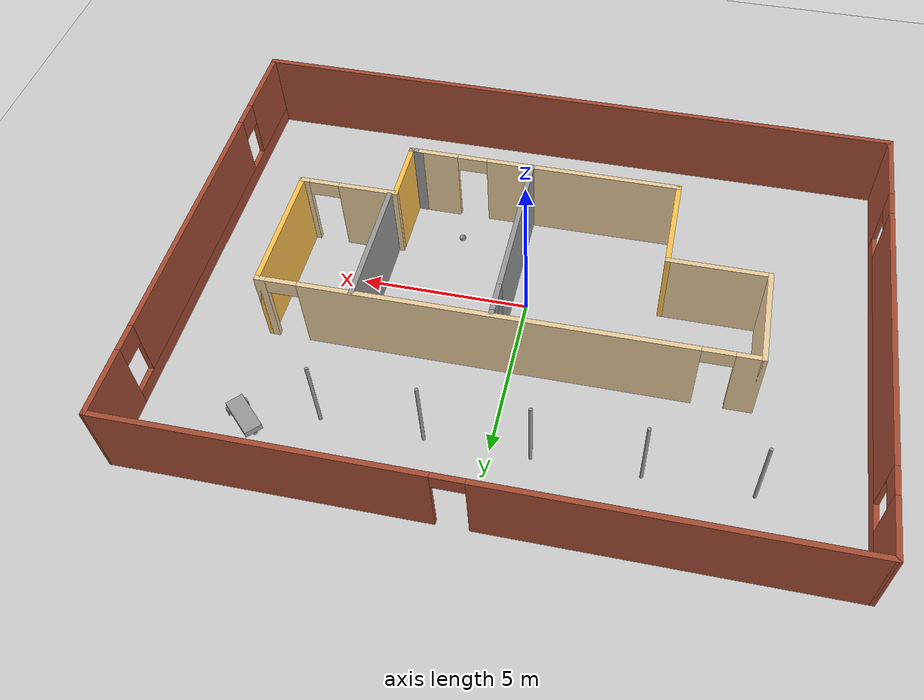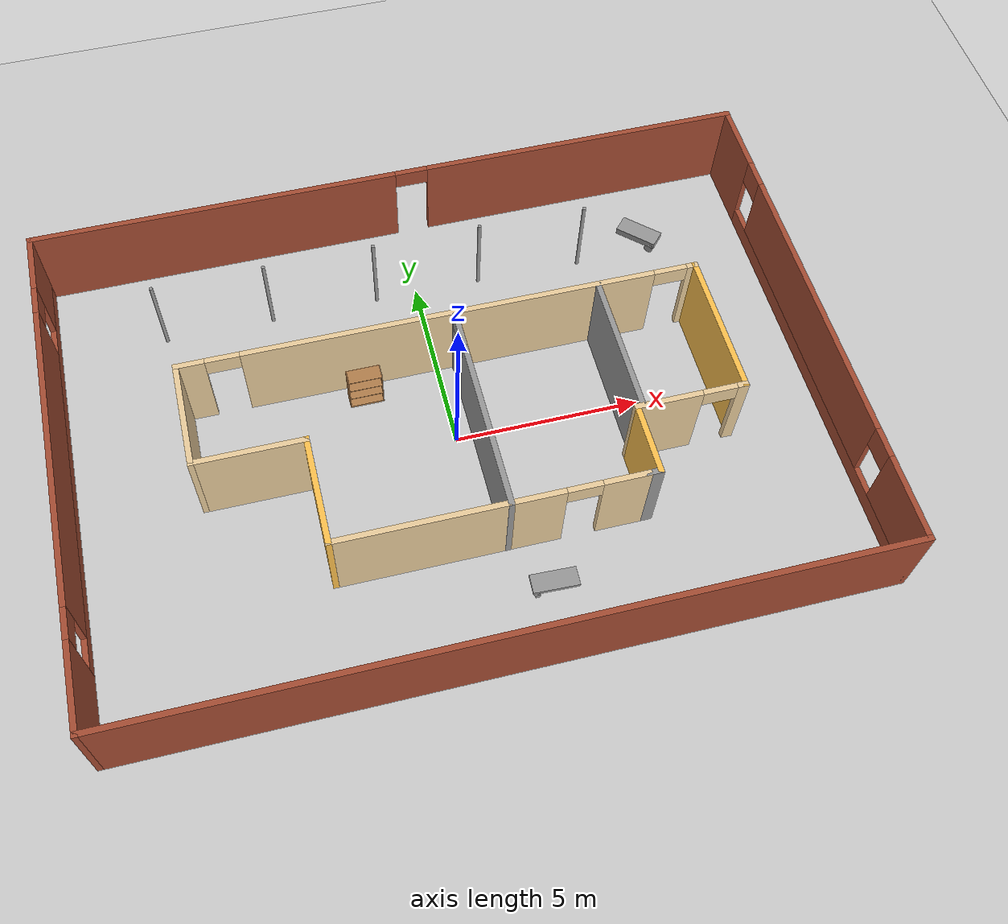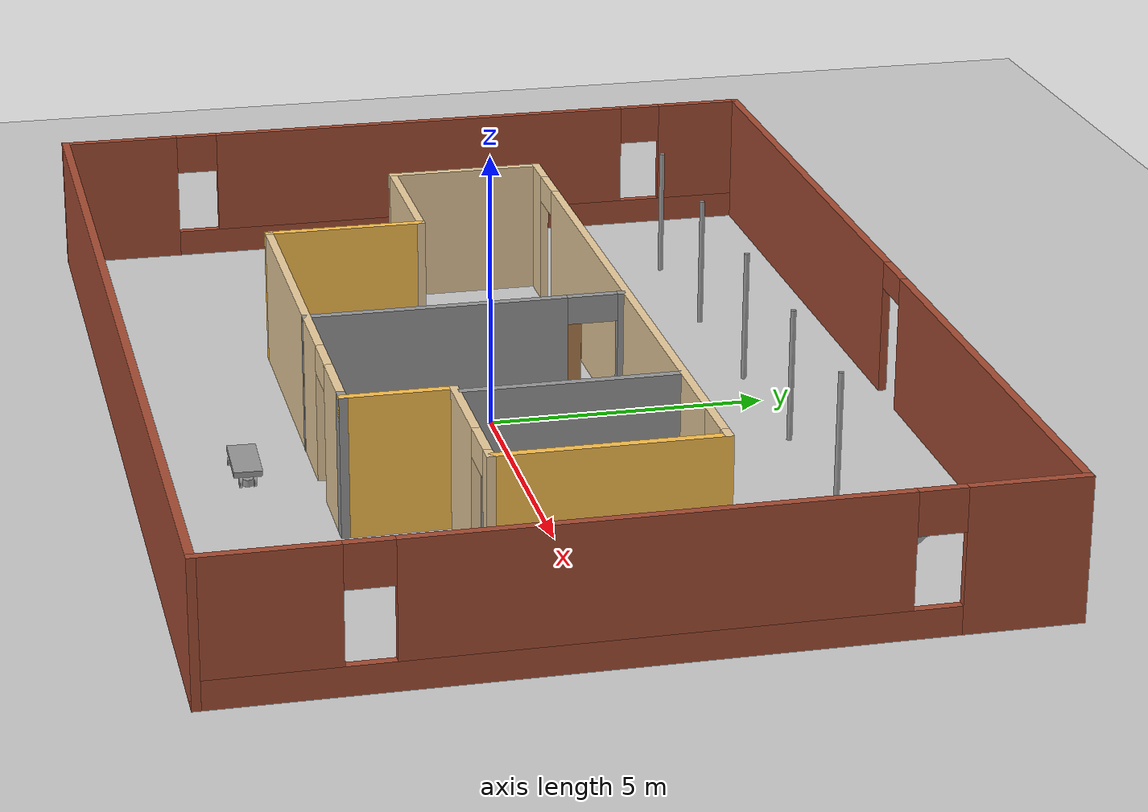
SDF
<sdf version="1.6">
 <world name="default">
  <plugin name="hello" filename="libhello.so"/>
  <light name="sun" type="directional">
   <pose>0 0 10 0 -0 0</pose>
   <diffuse>0.8 0.8 0.8 1</diffuse>
   <specular>0.1 0.1 0.1 1</specular>
   <attenuation>
    <range>1000</range>
    <constant>0.9</constant>
    <linear>0.01</linear>
    <quadratic>0.001</quadratic>
   </attenuation>
   <direction>-0.5 0.5 -1</direction>
  </light>
  <model name="ground_plane">
   <static>1</static>
   <link name="link">
    <collision name="collision">
     <geometry><plane><normal>0 0 1</normal><size>100 100</size></plane></geometry>
     <surface><friction><ode><mu>100</mu><mu2>50</mu2></ode></friction></surface>
    </collision>
    <visual name="visual">
     <cast_shadows>0</cast_shadows>
     <geometry><plane><normal>0 0 1</normal><size>100 100</size></plane></geometry>
     <material>
      <script><uri>file://media/materials/scripts/gazebo.material</uri><name>Gazebo/Grey</name></script>
     </material>
    </visual>
   </link>
  </model>
  <gravity>0 0 -9.8</gravity>
  <magnetic_field>6e-06 2.3e-05 -4.2e-05</magnetic_field>
  <atmosphere type="adiabatic"/>
  <physics name="default_physics" default="0" type="ode">
   <max_step_size>0.001</max_step_size>
   <real_time_factor>1</real_time_factor>
   <real_time_update_rate>1000</real_time_update_rate>
  </physics>
  <scene><ambient>0.4 0.4 0.4 1</ambient><background>0.7 0.7 0.7 1</background><shadows>1</shadows></scene>
  <spherical_coordinates>
   <surface_model>EARTH_WGS84</surface_model>
   <latitude_deg>0</latitude_deg>
   <longitude_deg>0</longitude_deg>
   <elevation>0</elevation>
   <heading_deg>0</heading_deg>
  </spherical_coordinates>
  <model name="p1building">
   <pose>-0.151426 0.38999 0 0 -0 0</pose>
   <link name="Wall_0">
    <pose>0.1485 -3.744 0 0 -0 3.14159</pose>
    <visual name="Wall_0_Visual_0">
     <pose>-3.3877 0 1.25 0 -0 0</pose>
     <geometry><box><size>1.22459 0.15 2.5</size></box></geometry>
     <material>
      <script><uri>file://media/materials/scripts/gazebo.material</uri><name>Gazebo/Grey</name></script>
      <ambient>0.921569 0.807843 0.615686 1</ambient>
     </material>
     <meta><layer>0</layer></meta>
    </visual>
    <collision name="Wall_0_Collision_0">
     <geometry><box><size>1.22459 0.15 2.5</size></box></geometry>
     <pose>-3.3877 0 1.25 0 -0 0</pose>
    </collision>
    <visual name="Wall_0_Visual_1">
     <pose>1.0623 0 1.25 0 -0 0</pose>
     <geometry><box><size>5.87541 0.15 2.5</size></box></geometry>
     <material>
      <script><uri>file://media/materials/scripts/gazebo.material</uri><name>Gazebo/Grey</name></script>
      <ambient>0.921569 0.807843 0.615686 1</ambient>
     </material>
     <meta><layer>0</layer></meta>
    </visual>
    <collision name="Wall_0_Collision_1">
     <geometry><box><size>5.87541 0.15 2.5</size></box></geometry>
     <pose>1.0623 0 1.25 0 -0 0</pose>
    </collision>
    <visual name="Wall_0_Visual_2">
     <pose>-2.32541 0 2.25 0 -0 0</pose>
     <geometry><box><size>0.9 0.15 0.5</size></box></geometry>
     <material>
      <script><uri>file://media/materials/scripts/gazebo.material</uri><name>Gazebo/Grey</name></script>
      <ambient>0.921569 0.807843 0.615686 1</ambient>
     </material>
     <meta><layer>0</layer></meta>
    </visual>
    <collision name="Wall_0_Collision_2">
     <geometry><box><size>0.9 0.15 0.5</size></box></geometry>
     <pose>-2.32541 0 2.25 0 -0 0</pose>
    </collision>
   </link>
   <link name="Wall_10">
    <pose>5.7985 -1.894 0 0 -0 3.14159</pose>
    <visual name="Wall_10_Visual_0">
     <pose>-1.35058 0 1.25 0 -0 0</pose>
     <geometry><box><size>0.298838 0.15 2.5</size></box></geometry>
     <material>
      <script><uri>file://media/materials/scripts/gazebo.material</uri><name>Gazebo/Grey</name></script>
      <ambient>0.921569 0.807843 0.615686 1</ambient>
     </material>
     <meta><layer>0</layer></meta>
    </visual>
    <collision name="Wall_10_Collision_0">
     <geometry><box><size>0.298838 0.15 2.5</size></box></geometry>
     <pose>-1.35058 0 1.25 0 -0 0</pose>
    </collision>
    <visual name="Wall_10_Visual_1">
     <pose>0.599419 0 1.25 0 -0 0</pose>
     <geometry><box><size>1.80116 0.15 2.5</size></box></geometry>
     <material>
      <script><uri>file://media/materials/scripts/gazebo.material</uri><name>Gazebo/Grey</name></script>
      <ambient>0.921569 0.807843 0.615686 1</ambient>
     </material>
     <meta><layer>0</layer></meta>
    </visual>
    <collision name="Wall_10_Collision_1">
     <geometry><box><size>1.80116 0.15 2.5</size></box></geometry>
     <pose>0.599419 0 1.25 0 -0 0</pose>
    </collision>
    <visual name="Wall_10_Visual_2">
     <pose>-0.751162 0 2.25 0 -0 0</pose>
     <geometry><box><size>0.9 0.15 0.5</size></box></geometry>
     <material>
      <script><uri>file://media/materials/scripts/gazebo.material</uri><name>Gazebo/Grey</name></script>
      <ambient>0.921569 0.807843 0.615686 1</ambient>
     </material>
     <meta><layer>0</layer></meta>
    </visual>
    <collision name="Wall_10_Collision_2">
     <geometry><box><size>0.9 0.15 0.5</size></box></geometry>
     <pose>-0.751162 0 2.25 0 -0 0</pose>
    </collision>
   </link>
   <link name="Wall_12">
    <collision name="Wall_12_Collision">
     <geometry><box><size>2 0.15 2.5</size></box></geometry>
     <pose>0 0 1.25 0 -0 0</pose>
    </collision>
    <visual name="Wall_12_Visual">
     <pose>0 0 1.25 0 -0 0</pose>
     <geometry><box><size>2 0.15 2.5</size></box></geometry>
     <material>
      <script><uri>file://media/materials/scripts/gazebo.material</uri><name>Gazebo/Grey</name></script>
      <ambient>1 0.764706 0.305882 1</ambient>
     </material>
     <meta><layer>0</layer></meta>
    </visual>
    <pose>4.3735 -2.819 0 0 0 -1.5708</pose>
   </link>
   <link name="Wall_13">
    <collision name="Wall_13_Collision">
     <geometry><box><size>0.45 0.15 2.5</size></box></geometry>
     <pose>0 0 1.25 0 -0 0</pose>
    </collision>
    <visual name="Wall_13_Visual">
     <pose>0 0 1.25 0 -0 0</pose>
     <geometry><box><size>0.45 0.15 2.5</size></box></geometry>
     <material>
      <script><uri>file://media/materials/scripts/gazebo.material</uri><name>Gazebo/Grey</name></script>
      <ambient>1 1 1 1</ambient>
     </material>
     <meta><layer>0</layer></meta>
    </visual>
    <pose>4.2235 -3.744 0 0 -0 3.14159</pose>
   </link>
   <link name="Wall_15">
    <collision name="Wall_15_Collision">
     <geometry><box><size>20 0.15 2.5</size></box></geometry>
     <pose>0 0 1.25 0 -0 0</pose>
    </collision>
    <visual name="Wall_15_Visual">
     <pose>0 0 1.25 0 -0 0</pose>
     <geometry><box><size>20 0.15 2.5</size></box></geometry>
     <material>
      <script><uri>file://media/materials/scripts/gazebo.material</uri><name>Gazebo/Bricks</name></script>
      <ambient>1 1 1 1</ambient>
     </material>
     <meta><layer>0</layer></meta>
    </visual>
    <pose>0.0025 -6.925 0 0 -0 3.14159</pose>
   </link>
   <link name="Wall_16">
    <pose>-9.925 0 0 0 -0 1.57116</pose>
    <visual name="Wall_16_Visual_0">
     <pose>-5.85842 0 1.25 0 -0 0</pose>
     <geometry><box><size>2.28316 0.15 2.5</size></box></geometry>
     <material>
      <script><uri>file://media/materials/scripts/gazebo.material</uri><name>Gazebo/Bricks</name></script>
      <ambient>1 1 1 1</ambient>
     </material>
     <meta><layer>0</layer></meta>
    </visual>
    <collision name="Wall_16_Collision_0">
     <geometry><box><size>2.28316 0.15 2.5</size></box></geometry>
     <pose>-5.85842 0 1.25 0 -0 0</pose>
    </collision>
    <visual name="Wall_16_Visual_1">
     <pose>1.14158 0 0.25 0 -0 0</pose>
     <geometry><box><size>11.7168 0.15 0.5</size></box></geometry>
     <material>
      <script><uri>file://media/materials/scripts/gazebo.material</uri><name>Gazebo/Bricks</name></script>
      <ambient>1 1 1 1</ambient>
     </material>
     <meta><layer>0</layer></meta>
    </visual>
    <collision name="Wall_16_Collision_1">
     <geometry><box><size>11.7168 0.15 0.5</size></box></geometry>
     <pose>1.14158 0 0.25 0 -0 0</pose>
    </collision>
    <visual name="Wall_16_Visual_2">
     <pose>0.280596 0 1.5 0 -0 0</pose>
     <geometry><box><size>8.39488 0.15 2</size></box></geometry>
     <material>
      <script><uri>file://media/materials/scripts/gazebo.material</uri><name>Gazebo/Bricks</name></script>
      <ambient>1 1 1 1</ambient>
     </material>
     <meta><layer>0</layer></meta>
    </visual>
    <collision name="Wall_16_Collision_2">
     <geometry><box><size>8.39488 0.15 2</size></box></geometry>
     <pose>0.280596 0 1.5 0 -0 0</pose>
    </collision>
    <visual name="Wall_16_Visual_3">
     <pose>6.13902 0 1.5 0 -0 0</pose>
     <geometry><box><size>1.72196 0.15 2</size></box></geometry>
     <material>
      <script><uri>file://media/materials/scripts/gazebo.material</uri><name>Gazebo/Bricks</name></script>
      <ambient>1 1 1 1</ambient>
     </material>
     <meta><layer>0</layer></meta>
    </visual>
    <collision name="Wall_16_Collision_3">
     <geometry><box><size>1.72196 0.15 2</size></box></geometry>
     <pose>6.13902 0 1.5 0 -0 0</pose>
    </collision>
    <visual name="Wall_16_Visual_4">
     <pose>-4.31684 0 2.125 0 -0 0</pose>
     <geometry><box><size>0.8 0.15 0.75</size></box></geometry>
     <material>
      <script><uri>file://media/materials/scripts/gazebo.material</uri><name>Gazebo/Bricks</name></script>
      <ambient>1 1 1 1</ambient>
     </material>
     <meta><layer>0</layer></meta>
    </visual>
    <collision name="Wall_16_Collision_4">
     <geometry><box><size>0.8 0.15 0.75</size></box></geometry>
     <pose>-4.31684 0 2.125 0 -0 0</pose>
    </collision>
    <visual name="Wall_16_Visual_5">
     <pose>4.87803 0 2.125 0 -0 0</pose>
     <geometry><box><size>0.8 0.15 0.75</size></box></geometry>
     <material>
      <script><uri>file://media/materials/scripts/gazebo.material</uri><name>Gazebo/Bricks</name></script>
      <ambient>1 1 1 1</ambient>
     </material>
     <meta><layer>0</layer></meta>
    </visual>
    <collision name="Wall_16_Collision_5">
     <geometry><box><size>0.8 0.15 0.75</size></box></geometry>
     <pose>4.87803 0 2.125 0 -0 0</pose>
    </collision>
   </link>
   <link name="Wall_18">
    <pose>-0.0025 6.925 0 0 -0 0</pose>
    <visual name="Wall_18_Visual_0">
     <pose>-4.92652 0 1.25 0 -0 0</pose>
     <geometry><box><size>10.147 0.15 2.5</size></box></geometry>
     <material>
      <script><uri>file://media/materials/scripts/gazebo.material</uri><name>Gazebo/Bricks</name></script>
      <ambient>1 1 1 1</ambient>
     </material>
     <meta><layer>0</layer></meta>
    </visual>
    <collision name="Wall_18_Collision_0">
     <geometry><box><size>10.147 0.15 2.5</size></box></geometry>
     <pose>-4.92652 0 1.25 0 -0 0</pose>
    </collision>
    <visual name="Wall_18_Visual_1">
     <pose>5.52348 0 1.25 0 -0 0</pose>
     <geometry><box><size>8.95305 0.15 2.5</size></box></geometry>
     <material>
      <script><uri>file://media/materials/scripts/gazebo.material</uri><name>Gazebo/Bricks</name></script>
      <ambient>1 1 1 1</ambient>
     </material>
     <meta><layer>0</layer></meta>
    </visual>
    <collision name="Wall_18_Collision_1">
     <geometry><box><size>8.95305 0.15 2.5</size></box></geometry>
     <pose>5.52348 0 1.25 0 -0 0</pose>
    </collision>
    <visual name="Wall_18_Visual_2">
     <pose>0.596952 0 2.25 0 -0 0</pose>
     <geometry><box><size>0.9 0.15 0.5</size></box></geometry>
     <material>
      <script><uri>file://media/materials/scripts/gazebo.material</uri><name>Gazebo/Bricks</name></script>
      <ambient>1 1 1 1</ambient>
     </material>
     <meta><layer>0</layer></meta>
    </visual>
    <collision name="Wall_18_Collision_2">
     <geometry><box><size>0.9 0.15 0.5</size></box></geometry>
     <pose>0.596952 0 2.25 0 -0 0</pose>
    </collision>
   </link>
   <link name="Wall_20">
    <pose>9.925 0 0 0 0 -1.57044</pose>
    <visual name="Wall_20_Visual_0">
     <pose>-5.98635 0 1.25 0 -0 0</pose>
     <geometry><box><size>2.02729 0.15 2.5</size></box></geometry>
     <material>
      <script><uri>file://media/materials/scripts/gazebo.material</uri><name>Gazebo/Bricks</name></script>
      <ambient>1 1 1 1</ambient>
     </material>
     <meta><layer>0</layer></meta>
    </visual>
    <collision name="Wall_20_Collision_0">
     <geometry><box><size>2.02729 0.15 2.5</size></box></geometry>
     <pose>-5.98635 0 1.25 0 -0 0</pose>
    </collision>
    <visual name="Wall_20_Visual_1">
     <pose>1.01365 0 0.25 0 -0 0</pose>
     <geometry><box><size>11.9727 0.15 0.5</size></box></geometry>
     <material>
      <script><uri>file://media/materials/scripts/gazebo.material</uri><name>Gazebo/Bricks</name></script>
      <ambient>1 1 1 1</ambient>
     </material>
     <meta><layer>0</layer></meta>
    </visual>
    <collision name="Wall_20_Collision_1">
     <geometry><box><size>11.9727 0.15 0.5</size></box></geometry>
     <pose>1.01365 0 0.25 0 -0 0</pose>
    </collision>
    <visual name="Wall_20_Visual_2">
     <pose>-0.142711 0 1.5 0 -0 0</pose>
     <geometry><box><size>8.05999 0.15 2</size></box></geometry>
     <material>
      <script><uri>file://media/materials/scripts/gazebo.material</uri><name>Gazebo/Bricks</name></script>
      <ambient>1 1 1 1</ambient>
     </material>
     <meta><layer>0</layer></meta>
    </visual>
    <collision name="Wall_20_Collision_2">
     <geometry><box><size>8.05999 0.15 2</size></box></geometry>
     <pose>-0.142711 0 1.5 0 -0 0</pose>
    </collision>
    <visual name="Wall_20_Visual_3">
     <pose>5.84364 0 1.5 0 -0 0</pose>
     <geometry><box><size>2.31271 0.15 2</size></box></geometry>
     <material>
      <script><uri>file://media/materials/scripts/gazebo.material</uri><name>Gazebo/Bricks</name></script>
      <ambient>1 1 1 1</ambient>
     </material>
     <meta><layer>0</layer></meta>
    </visual>
    <collision name="Wall_20_Collision_3">
     <geometry><box><size>2.31271 0.15 2</size></box></geometry>
     <pose>5.84364 0 1.5 0 -0 0</pose>
    </collision>
    <visual name="Wall_20_Visual_4">
     <pose>-4.57271 0 2.125 0 -0 0</pose>
     <geometry><box><size>0.8 0.15 0.75</size></box></geometry>
     <material>
      <script><uri>file://media/materials/scripts/gazebo.material</uri><name>Gazebo/Bricks</name></script>
      <ambient>1 1 1 1</ambient>
     </material>
     <meta><layer>0</layer></meta>
    </visual>
    <collision name="Wall_20_Collision_4">
     <geometry><box><size>0.8 0.15 0.75</size></box></geometry>
     <pose>-4.57271 0 2.125 0 -0 0</pose>
    </collision>
    <visual name="Wall_20_Visual_5">
     <pose>4.28728 0 2.125 0 -0 0</pose>
     <geometry><box><size>0.8 0.15 0.75</size></box></geometry>
     <material>
      <script><uri>file://media/materials/scripts/gazebo.material</uri><name>Gazebo/Bricks</name></script>
      <ambient>1 1 1 1</ambient>
     </material>
     <meta><layer>0</layer></meta>
    </visual>
    <collision name="Wall_20_Collision_5">
     <geometry><box><size>0.8 0.15 0.75</size></box></geometry>
     <pose>4.28728 0 2.125 0 -0 0</pose>
    </collision>
   </link>
   <link name="Wall_22">
    <collision name="Wall_22_Collision">
     <geometry><box><size>3.85 0.15 2.5</size></box></geometry>
     <pose>0 0 1.25 0 -0 0</pose>
    </collision>
    <visual name="Wall_22_Visual">
     <pose>0 0 1.25 0 -0 0</pose>
     <geometry><box><size>3.85 0.15 2.5</size></box></geometry>
     <material>
      <script><uri>file://media/materials/scripts/gazebo.material</uri><name>Gazebo/Grey</name></script>
      <ambient>1 1 1 1</ambient>
     </material>
     <meta><layer>0</layer></meta>
    </visual>
    <pose>4.5285 0.067 0 0 0 -1.5708</pose>
   </link>
   <link name="Wall_26">
    <pose>0.644611 -0.949596 0 0 0 -1.5708</pose>
    <visual name="Wall_26_Visual_0">
     <pose>-2.79939 0 1.25 0 -0 0</pose>
     <geometry><box><size>0.151226 0.15 2.5</size></box></geometry>
     <material>
      <script><uri>file://media/materials/scripts/gazebo.material</uri><name>Gazebo/Grey</name></script>
      <ambient>1 1 1 1</ambient>
     </material>
     <meta><layer>0</layer></meta>
    </visual>
    <collision name="Wall_26_Collision_0">
     <geometry><box><size>0.151226 0.15 2.5</size></box></geometry>
     <pose>-2.79939 0 1.25 0 -0 0</pose>
    </collision>
    <visual name="Wall_26_Visual_1">
     <pose>0.525613 0 1.25 0 -0 0</pose>
     <geometry><box><size>4.69877 0.15 2.5</size></box></geometry>
     <material>
      <script><uri>file://media/materials/scripts/gazebo.material</uri><name>Gazebo/Grey</name></script>
      <ambient>1 1 1 1</ambient>
     </material>
     <meta><layer>0</layer></meta>
    </visual>
    <collision name="Wall_26_Collision_1">
     <geometry><box><size>4.69877 0.15 2.5</size></box></geometry>
     <pose>0.525613 0 1.25 0 -0 0</pose>
    </collision>
    <visual name="Wall_26_Visual_2">
     <pose>-2.27377 0 2.25 0 -0 0</pose>
     <geometry><box><size>0.9 0.15 0.5</size></box></geometry>
     <material>
      <script><uri>file://media/materials/scripts/gazebo.material</uri><name>Gazebo/Grey</name></script>
      <ambient>1 1 1 1</ambient>
     </material>
     <meta><layer>0</layer></meta>
    </visual>
    <collision name="Wall_26_Collision_2">
     <geometry><box><size>0.9 0.15 0.5</size></box></geometry>
     <pose>-2.27377 0 2.25 0 -0 0</pose>
    </collision>
   </link>
   <link name="Wall_3">
    <collision name="Wall_3_Collision">
     <geometry><box><size>3 0.15 2.5</size></box></geometry>
     <pose>0 0 1.25 0 -0 0</pose>
    </collision>
    <visual name="Wall_3_Visual">
     <pose>0 0 1.25 0 -0 0</pose>
     <geometry><box><size>3 0.15 2.5</size></box></geometry>
     <material>
      <script><uri>file://media/materials/scripts/gazebo.material</uri><name>Gazebo/Grey</name></script>
      <ambient>1 0.764706 0.305882 1</ambient>
     </material>
     <meta><layer>0</layer></meta>
    </visual>
    <pose>-3.7765 -2.319 0 0 -0 1.5708</pose>
   </link>
   <link name="Wall_4">
    <collision name="Wall_4_Collision">
     <geometry><box><size>3 0.15 2.5</size></box></geometry>
     <pose>0 0 1.25 0 -0 0</pose>
    </collision>
    <visual name="Wall_4_Visual">
     <pose>0 0 1.25 0 -0 0</pose>
     <geometry><box><size>3 0.15 2.5</size></box></geometry>
     <material>
      <script><uri>file://media/materials/scripts/gazebo.material</uri><name>Gazebo/Grey</name></script>
      <ambient>0.921569 0.807843 0.615686 1</ambient>
     </material>
     <meta><layer>0</layer></meta>
    </visual>
    <pose>-5.2015 -0.894 0 0 -0 3.14159</pose>
   </link>
   <link name="Wall_5">
    <collision name="Wall_5_Collision">
     <geometry><box><size>3 0.15 2.5</size></box></geometry>
     <pose>0 0 1.25 0 -0 0</pose>
    </collision>
    <visual name="Wall_5_Visual">
     <pose>0 0 1.25 0 -0 0</pose>
     <geometry><box><size>3 0.15 2.5</size></box></geometry>
     <material>
      <script><uri>file://media/materials/scripts/gazebo.material</uri><name>Gazebo/Grey</name></script>
      <ambient>0.921569 0.807843 0.615686 1</ambient>
     </material>
     <meta><layer>0</layer></meta>
    </visual>
    <pose>-6.6265 0.531 0 0 -0 1.5708</pose>
   </link>
   <link name="Wall_7">
    <pose>0.2985 1.956 0 0 -0 0</pose>
    <visual name="Wall_7_Visual_0">
     <pose>-6.59491 0 1.25 0 -0 0</pose>
     <geometry><box><size>0.810185 0.15 2.5</size></box></geometry>
     <material>
      <script><uri>file://media/materials/scripts/gazebo.material</uri><name>Gazebo/Grey</name></script>
      <ambient>0.921569 0.807843 0.615686 1</ambient>
     </material>
     <meta><layer>0</layer></meta>
    </visual>
    <collision name="Wall_7_Collision_0">
     <geometry><box><size>0.810185 0.15 2.5</size></box></geometry>
     <pose>-6.59491 0 1.25 0 -0 0</pose>
    </collision>
    <visual name="Wall_7_Visual_1">
     <pose>0.246824 0 1.25 0 -0 0</pose>
     <geometry><box><size>11.0733 0.15 2.5</size></box></geometry>
     <material>
      <script><uri>file://media/materials/scripts/gazebo.material</uri><name>Gazebo/Grey</name></script>
      <ambient>0.921569 0.807843 0.615686 1</ambient>
     </material>
     <meta><layer>0</layer></meta>
    </visual>
    <collision name="Wall_7_Collision_1">
     <geometry><box><size>11.0733 0.15 2.5</size></box></geometry>
     <pose>0.246824 0 1.25 0 -0 0</pose>
    </collision>
    <visual name="Wall_7_Visual_2">
     <pose>6.84173 0 1.25 0 -0 0</pose>
     <geometry><box><size>0.316536 0.15 2.5</size></box></geometry>
     <material>
      <script><uri>file://media/materials/scripts/gazebo.material</uri><name>Gazebo/Grey</name></script>
      <ambient>0.921569 0.807843 0.615686 1</ambient>
     </material>
     <meta><layer>0</layer></meta>
    </visual>
    <collision name="Wall_7_Collision_2">
     <geometry><box><size>0.316536 0.15 2.5</size></box></geometry>
     <pose>6.84173 0 1.25 0 -0 0</pose>
    </collision>
    <visual name="Wall_7_Visual_3">
     <pose>-5.73982 0 2.25 0 -0 0</pose>
     <geometry><box><size>0.9 0.15 0.5</size></box></geometry>
     <material>
      <script><uri>file://media/materials/scripts/gazebo.material</uri><name>Gazebo/Grey</name></script>
      <ambient>0.921569 0.807843 0.615686 1</ambient>
     </material>
     <meta><layer>0</layer></meta>
    </visual>
    <collision name="Wall_7_Collision_3">
     <geometry><box><size>0.9 0.15 0.5</size></box></geometry>
     <pose>-5.73982 0 2.25 0 -0 0</pose>
    </collision>
    <visual name="Wall_7_Visual_4">
     <pose>6.23346 0 2.25 0 -0 0</pose>
     <geometry><box><size>0.9 0.15 0.5</size></box></geometry>
     <material>
      <script><uri>file://media/materials/scripts/gazebo.material</uri><name>Gazebo/Grey</name></script>
      <ambient>0.921569 0.807843 0.615686 1</ambient>
     </material>
     <meta><layer>0</layer></meta>
    </visual>
    <collision name="Wall_7_Collision_4">
     <geometry><box><size>0.9 0.15 0.5</size></box></geometry>
     <pose>6.23346 0 2.25 0 -0 0</pose>
    </collision>
   </link>
   <link name="Wall_9">
    <collision name="Wall_9_Collision">
     <geometry><box><size>4 0.15 2.5</size></box></geometry>
     <pose>0 0 1.25 0 -0 0</pose>
    </collision>
    <visual name="Wall_9_Visual">
     <pose>0 0 1.25 0 -0 0</pose>
     <geometry><box><size>4 0.15 2.5</size></box></geometry>
     <material>
      <script><uri>file://media/materials/scripts/gazebo.material</uri><name>Gazebo/Grey</name></script>
      <ambient>1 0.764706 0.305882 1</ambient>
     </material>
     <meta><layer>0</layer></meta>
    </visual>
    <pose>7.2235 0.031 0 0 0 -1.5708</pose>
   </link>
   <static>1</static>
  </model>
  <model name="T2tug">
   <link name="link_0">
    <inertial>
     <mass>1</mass>
     <inertia>
      <ixx>0.166667</ixx>
      <ixy>0</ixy>
      <ixz>0</ixz>
      <iyy>0.166667</iyy>
      <iyz>0</iyz>
      <izz>0.166667</izz>
     </inertia>
    </inertial>
    <pose>-0.091667 0 0.15 0 -0 0</pose>
    <visual name="visual">
     <geometry><box><size>1.2 0.5 0.1</size></box></geometry>
     <material>
      <lighting>1</lighting>
      <script><uri>file://media/materials/scripts/gazebo.material</uri><name>Gazebo/Grey</name></script>
      <shader type="pixel"><normal_map>__default__</normal_map></shader>
      <ambient>0.3 0.3 0.3 1</ambient>
      <diffuse>0.7 0.7 0.7 1</diffuse>
      <specular>0.01 0.01 0.01 1</specular>
      <emissive>0 0 0 1</emissive>
     </material>
    </visual>
    <collision name="collision">
     <geometry><box><size>1.2 0.5 0.1</size></box></geometry>
     <surface>
      <friction>
       <ode><mu>1</mu><mu2>1</mu2><fdir1>0 0 0</fdir1><slip1>0</slip1><slip2>0</slip2></ode>
       <torsional>
        <coefficient>1</coefficient>
        <patch_radius>0</patch_radius>
        <surface_radius>0</surface_radius>
        <use_patch_radius>1</use_patch_radius>
        <ode><slip>0</slip></ode>
       </torsional>
      </friction>
      <bounce><restitution_coefficient>0</restitution_coefficient><threshold>1e+06</threshold></bounce>
      <contact>
       <collide_without_contact>0</collide_without_contact>
       <collide_without_contact_bitmask>1</collide_without_contact_bitmask>
       <collide_bitmask>1</collide_bitmask>
       <ode>
        <soft_cfm>0</soft_cfm>
        <soft_erp>0.2</soft_erp>
        <kp>1e+13</kp>
        <kd>1</kd>
        <max_vel>0.01</max_vel>
        <min_depth>0</min_depth>
       </ode>
       <bullet>
        <split_impulse>1</split_impulse>
        <split_impulse_penetration_threshold>-0.01</split_impulse_penetration_threshold>
        <soft_cfm>0</soft_cfm>
        <soft_erp>0.2</soft_erp>
        <kp>1e+13</kp>
        <kd>1</kd>
       </bullet>
      </contact>
     </surface>
    </collision>
   </link>
   <link name="link_2">
    <inertial>
     <mass>1</mass>
     <inertia><ixx>0.145833</ixx><ixy>0</ixy><ixz>0</ixz><iyy>0.145833</iyy><iyz>0</iyz><izz>0.125</izz></inertia>
    </inertial>
    <pose>0.408333 -0.125 -0.02 1.5707 -0 0</pose>
    <visual name="visual">
     <geometry><cylinder><radius>0.1</radius><length>0.05</length></cylinder></geometry>
     <material>
      <lighting>1</lighting>
      <script><uri>file://media/materials/scripts/gazebo.material</uri><name>Gazebo/Grey</name></script>
      <shader type="pixel"><normal_map>__default__</normal_map></shader>
      <ambient>0.3 0.3 0.3 1</ambient>
      <diffuse>0.7 0.7 0.7 1</diffuse>
      <specular>0.01 0.01 0.01 1</specular>
      <emissive>0 0 0 1</emissive>
     </material>
    </visual>
    <collision name="collision">
     <geometry><cylinder><radius>0.1</radius><length>0.05</length></cylinder></geometry>
     <surface>
      <friction>
       <ode><mu>1</mu><mu2>1</mu2><fdir1>0 0 0</fdir1><slip1>0</slip1><slip2>0</slip2></ode>
       <torsional>
        <coefficient>1</coefficient>
        <patch_radius>0</patch_radius>
        <surface_radius>0</surface_radius>
        <use_patch_radius>1</use_patch_radius>
        <ode><slip>0</slip></ode>
       </torsional>
      </friction>
      <bounce><restitution_coefficient>0</restitution_coefficient><threshold>1e+06</threshold></bounce>
      <contact>
       <collide_without_contact>0</collide_without_contact>
       <collide_without_contact_bitmask>1</collide_without_contact_bitmask>
       <collide_bitmask>1</collide_bitmask>
       <ode>
        <soft_cfm>0</soft_cfm>
        <soft_erp>0.2</soft_erp>
        <kp>1e+13</kp>
        <kd>1</kd>
        <max_vel>0.01</max_vel>
        <min_depth>0</min_depth>
       </ode>
       <bullet>
        <split_impulse>1</split_impulse>
        <split_impulse_penetration_threshold>-0.01</split_impulse_penetration_threshold>
        <soft_cfm>0</soft_cfm>
        <soft_erp>0.2</soft_erp>
        <kp>1e+13</kp>
        <kd>1</kd>
       </bullet>
      </contact>
     </surface>
    </collision>
   </link>
   <link name="link_2_clone">
    <inertial>
     <mass>1</mass>
     <inertia><ixx>0.145833</ixx><ixy>0</ixy><ixz>0</ixz><iyy>0.145833</iyy><iyz>0</iyz><izz>0.125</izz></inertia>
    </inertial>
    <pose>0.408333 0.125 -0.02 1.5707 -0 0</pose>
    <visual name="visual">
     <geometry><cylinder><radius>0.1</radius><length>0.05</length></cylinder></geometry>
     <material>
      <lighting>1</lighting>
      <script><uri>file://media/materials/scripts/gazebo.material</uri><name>Gazebo/Grey</name></script>
      <shader type="pixel"><normal_map>__default__</normal_map></shader>
      <ambient>0.3 0.3 0.3 1</ambient>
      <diffuse>0.7 0.7 0.7 1</diffuse>
      <specular>0.01 0.01 0.01 1</specular>
      <emissive>0 0 0 1</emissive>
     </material>
    </visual>
    <collision name="collision">
     <geometry><cylinder><radius>0.1</radius><length>0.05</length></cylinder></geometry>
     <surface>
      <friction>
       <ode><mu>1</mu><mu2>1</mu2><fdir1>0 0 0</fdir1><slip1>0</slip1><slip2>0</slip2></ode>
       <torsional>
        <coefficient>1</coefficient>
        <patch_radius>0</patch_radius>
        <surface_radius>0</surface_radius>
        <use_patch_radius>1</use_patch_radius>
        <ode><slip>0</slip></ode>
       </torsional>
      </friction>
      <bounce><restitution_coefficient>0</restitution_coefficient><threshold>1e+06</threshold></bounce>
      <contact>
       <collide_without_contact>0</collide_without_contact>
       <collide_without_contact_bitmask>1</collide_without_contact_bitmask>
       <collide_bitmask>1</collide_bitmask>
       <ode>
        <soft_cfm>0</soft_cfm>
        <soft_erp>0.2</soft_erp>
        <kp>1e+13</kp>
        <kd>1</kd>
        <max_vel>0.01</max_vel>
        <min_depth>0</min_depth>
       </ode>
       <bullet>
        <split_impulse>1</split_impulse>
        <split_impulse_penetration_threshold>-0.01</split_impulse_penetration_threshold>
        <soft_cfm>0</soft_cfm>
        <soft_erp>0.2</soft_erp>
        <kp>1e+13</kp>
        <kd>1</kd>
       </bullet>
      </contact>
     </surface>
    </collision>
   </link>
   <link name="link_2_clone_0">
    <inertial>
     <mass>1</mass>
     <inertia><ixx>0.145833</ixx><ixy>0</ixy><ixz>0</ixz><iyy>0.145833</iyy><iyz>0</iyz><izz>0.125</izz></inertia>
    </inertial>
    <pose>-0.566667 0.215 -0.045 1.5707 -0 0</pose>
    <visual name="visual">
     <geometry><cylinder><radius>0.075</radius><length>0.08</length></cylinder></geometry>
     <material>
      <lighting>1</lighting>
      <script><uri>file://media/materials/scripts/gazebo.material</uri><name>Gazebo/Grey</name></script>
      <shader type="pixel"><normal_map>__default__</normal_map></shader>
      <ambient>0.3 0.3 0.3 1</ambient>
      <diffuse>0.7 0.7 0.7 1</diffuse>
      <specular>0.01 0.01 0.01 1</specular>
      <emissive>0 0 0 1</emissive>
     </material>
    </visual>
    <collision name="collision">
     <geometry><cylinder><radius>0.075</radius><length>0.08</length></cylinder></geometry>
     <surface>
      <friction>
       <ode><mu>1</mu><mu2>1</mu2><fdir1>0 0 0</fdir1><slip1>0</slip1><slip2>0</slip2></ode>
       <torsional>
        <coefficient>1</coefficient>
        <patch_radius>0</patch_radius>
        <surface_radius>0</surface_radius>
        <use_patch_radius>1</use_patch_radius>
        <ode><slip>0</slip></ode>
       </torsional>
      </friction>
      <bounce><restitution_coefficient>0</restitution_coefficient><threshold>1e+06</threshold></bounce>
      <contact>
       <collide_without_contact>0</collide_without_contact>
       <collide_without_contact_bitmask>1</collide_without_contact_bitmask>
       <collide_bitmask>1</collide_bitmask>
       <ode>
        <soft_cfm>0</soft_cfm>
        <soft_erp>0.2</soft_erp>
        <kp>1e+13</kp>
        <kd>1</kd>
        <max_vel>0.01</max_vel>
        <min_depth>0</min_depth>
       </ode>
       <bullet>
        <split_impulse>1</split_impulse>
        <split_impulse_penetration_threshold>-0.01</split_impulse_penetration_threshold>
        <soft_cfm>0</soft_cfm>
        <soft_erp>0.2</soft_erp>
        <kp>1e+13</kp>
        <kd>1</kd>
       </bullet>
      </contact>
     </surface>
    </collision>
   </link>
   <link name="link_3">
    <inertial>
     <mass>1</mass>
     <inertia><ixx>0.145833</ixx><ixy>0</ixy><ixz>0</ixz><iyy>0.145833</iyy><iyz>0</iyz><izz>0.125</izz></inertia>
     <pose>0 0 0.1 0 -0 0</pose>
    </inertial>
    <pose>0.408333 0 -0.02 0 -0 0</pose>
    <visual name="visual">
     <geometry><cylinder><radius>0.1</radius><length>0.125</length></cylinder></geometry>
     <material>
      <lighting>1</lighting>
      <script><uri>file://media/materials/scripts/gazebo.material</uri><name>Gazebo/Grey</name></script>
      <shader type="pixel"><normal_map>__default__</normal_map></shader>
      <ambient>0.3 0.3 0.3 1</ambient>
      <diffuse>0.7 0.7 0.7 1</diffuse>
      <specular>0.01 0.01 0.01 1</specular>
      <emissive>0 0 0 1</emissive>
     </material>
    </visual>
    <collision name="collision">
     <geometry><cylinder><radius>0.1</radius><length>0.125</length></cylinder></geometry>
     <surface>
      <friction>
       <ode><mu>1</mu><mu2>1</mu2><fdir1>0 0 0</fdir1><slip1>0</slip1><slip2>0</slip2></ode>
       <torsional>
        <coefficient>1</coefficient>
        <patch_radius>0</patch_radius>
        <surface_radius>0</surface_radius>
        <use_patch_radius>1</use_patch_radius>
        <ode><slip>0</slip></ode>
       </torsional>
      </friction>
      <bounce><restitution_coefficient>0</restitution_coefficient><threshold>1e+06</threshold></bounce>
      <contact>
       <collide_without_contact>0</collide_without_contact>
       <collide_without_contact_bitmask>1</collide_without_contact_bitmask>
       <collide_bitmask>1</collide_bitmask>
       <ode>
        <soft_cfm>0</soft_cfm>
        <soft_erp>0.2</soft_erp>
        <kp>1e+13</kp>
        <kd>1</kd>
        <max_vel>0.01</max_vel>
        <min_depth>0</min_depth>
       </ode>
       <bullet>
        <split_impulse>1</split_impulse>
        <split_impulse_penetration_threshold>-0.01</split_impulse_penetration_threshold>
        <soft_cfm>0</soft_cfm>
        <soft_erp>0.2</soft_erp>
        <kp>1e+13</kp>
        <kd>1</kd>
       </bullet>
      </contact>
     </surface>
    </collision>
   </link>
   <link name="link_4">
    <inertial>
     <mass>1</mass>
     <inertia><ixx>0.145833</ixx><ixy>0</ixy><ixz>0</ixz><iyy>0.145833</iyy><iyz>0</iyz><izz>0.125</izz></inertia>
    </inertial>
    <pose>-0.566667 -0.215 -0.045 1.5707 -0 0</pose>
    <visual name="visual">
     <geometry><cylinder><radius>0.075</radius><length>0.08</length></cylinder></geometry>
     <material>
      <lighting>1</lighting>
      <script><uri>file://media/materials/scripts/gazebo.material</uri><name>Gazebo/Grey</name></script>
      <shader type="pixel"><normal_map>__default__</normal_map></shader>
      <ambient>0.3 0.3 0.3 1</ambient>
      <diffuse>0.7 0.7 0.7 1</diffuse>
      <specular>0.01 0.01 0.01 1</specular>
      <emissive>0 0 0 1</emissive>
     </material>
    </visual>
    <collision name="collision">
     <geometry><cylinder><radius>0.075</radius><length>0.08</length></cylinder></geometry>
     <surface>
      <friction>
       <ode><mu>1</mu><mu2>1</mu2><fdir1>0 0 0</fdir1><slip1>0</slip1><slip2>0</slip2></ode>
       <torsional>
        <coefficient>1</coefficient>
        <patch_radius>0</patch_radius>
        <surface_radius>0</surface_radius>
        <use_patch_radius>1</use_patch_radius>
        <ode><slip>0</slip></ode>
       </torsional>
      </friction>
      <bounce><restitution_coefficient>0</restitution_coefficient><threshold>1e+06</threshold></bounce>
      <contact>
       <collide_without_contact>0</collide_without_contact>
       <collide_without_contact_bitmask>1</collide_without_contact_bitmask>
       <collide_bitmask>1</collide_bitmask>
       <ode>
        <soft_cfm>0</soft_cfm>
        <soft_erp>0.2</soft_erp>
        <kp>1e+13</kp>
        <kd>1</kd>
        <max_vel>0.01</max_vel>
        <min_depth>0</min_depth>
       </ode>
       <bullet>
        <split_impulse>1</split_impulse>
        <split_impulse_penetration_threshold>-0.01</split_impulse_penetration_threshold>
        <soft_cfm>0</soft_cfm>
        <soft_erp>0.2</soft_erp>
        <kp>1e+13</kp>
        <kd>1</kd>
       </bullet>
      </contact>
     </surface>
    </collision>
   </link>
   <joint name="link_0_JOINT_2" type="revolute">
    <parent>link_0</parent>
    <child>link_3</child>
    <axis>
     <xyz>0 0 1</xyz>
     <use_parent_model_frame>0</use_parent_model_frame>
     <limit>
      <lower>-1.79769e+308</lower>
      <upper>1.79769e+308</upper>
      <effort>-1</effort>
      <velocity>-1</velocity>
     </limit>
     <dynamics>
      <spring_reference>0</spring_reference>
      <spring_stiffness>0</spring_stiffness>
      <damping>0</damping>
     </dynamics>
    </axis>
    <physics>
     <ode><limit><cfm>0</cfm><erp>0.2</erp></limit><suspension><cfm>0</cfm><erp>0.2</erp></suspension></ode>
    </physics>
   </joint>
   <joint name="link_0_JOINT_3" type="revolute">
    <parent>link_0</parent>
    <child>link_4</child>
    <axis>
     <xyz>0 0 1</xyz>
     <use_parent_model_frame>0</use_parent_model_frame>
     <limit>
      <lower>-1.79769e+308</lower>
      <upper>1.79769e+308</upper>
      <effort>-1</effort>
      <velocity>-1</velocity>
     </limit>
     <dynamics>
      <spring_reference>0</spring_reference>
      <spring_stiffness>0</spring_stiffness>
      <damping>0</damping>
     </dynamics>
    </axis>
    <physics>
     <ode><limit><cfm>0</cfm><erp>0.2</erp></limit><suspension><cfm>0</cfm><erp>0.2</erp></suspension></ode>
    </physics>
   </joint>
   <joint name="link_0_JOINT_4" type="revolute">
    <parent>link_0</parent>
    <child>link_2_clone_0</child>
    <axis>
     <xyz>0 0 -1</xyz>
     <use_parent_model_frame>0</use_parent_model_frame>
     <limit>
      <lower>-1.79769e+308</lower>
      <upper>1.79769e+308</upper>
      <effort>-1</effort>
      <velocity>-1</velocity>
     </limit>
     <dynamics>
      <spring_reference>0</spring_reference>
      <spring_stiffness>0</spring_stiffness>
      <damping>0</damping>
     </dynamics>
    </axis>
    <physics>
     <ode><limit><cfm>0</cfm><erp>0.2</erp></limit><suspension><cfm>0</cfm><erp>0.2</erp></suspension></ode>
    </physics>
   </joint>
   <joint name="link_3_JOINT_0" type="revolute">
    <parent>link_3</parent>
    <child>link_2</child>
    <axis>
     <xyz>0 0 1</xyz>
     <use_parent_model_frame>0</use_parent_model_frame>
     <limit>
      <lower>-1.79769e+308</lower>
      <upper>1.79769e+308</upper>
      <effort>-1</effort>
      <velocity>-1</velocity>
     </limit>
     <dynamics>
      <spring_reference>0</spring_reference>
      <spring_stiffness>0</spring_stiffness>
      <damping>0</damping>
     </dynamics>
    </axis>
    <physics>
     <ode><limit><cfm>0</cfm><erp>0.2</erp></limit><suspension><cfm>0</cfm><erp>0.2</erp></suspension></ode>
    </physics>
   </joint>
   <joint name="link_3_JOINT_1" type="revolute">
    <parent>link_3</parent>
    <child>link_2_clone</child>
    <axis>
     <xyz>0 0 -1</xyz>
     <use_parent_model_frame>0</use_parent_model_frame>
     <limit>
      <lower>-1.79769e+308</lower>
      <upper>1.79769e+308</upper>
      <effort>-1</effort>
      <velocity>-1</velocity>
     </limit>
     <dynamics>
      <spring_reference>0</spring_reference>
      <spring_stiffness>0</spring_stiffness>
      <damping>0</damping>
     </dynamics>
    </axis>
    <physics>
     <ode><limit><cfm>0</cfm><erp>0.2</erp></limit><suspension><cfm>0</cfm><erp>0.2</erp></suspension></ode>
    </physics>
   </joint>
   <static>0</static>
   <pose>1.45002 -4.61831 0.120003 4e-06 3e-06 -0.035667</pose>
  </model>
  <model name="Cartbot">
   <link name="link_0">
    <inertial>
     <mass>1</mass>
     <inertia>
      <ixx>0.166667</ixx>
      <ixy>0</ixy>
      <ixz>0</ixz>
      <iyy>0.166667</iyy>
      <iyz>0</iyz>
      <izz>0.166667</izz>
     </inertia>
    </inertial>
    <pose>-0.0985 0.00825 0.1065 0 -0 0</pose>
    <visual name="visual">
     <geometry><box><size>1.2 0.5 0.2</size></box></geometry>
     <material>
      <lighting>1</lighting>
      <script><uri>file://media/materials/scripts/gazebo.material</uri><name>Gazebo/Grey</name></script>
      <shader type="vertex"><normal_map>__default__</normal_map></shader>
      <ambient>0.3 0.3 0.3 1</ambient>
      <diffuse>0.7 0.7 0.7 1</diffuse>
      <specular>0.01 0.01 0.01 1</specular>
      <emissive>0 0 0 1</emissive>
     </material>
    </visual>
    <collision name="collision">
     <geometry><box><size>1.2 0.5 0.2</size></box></geometry>
     <surface>
      <friction>
       <ode><mu>1</mu><mu2>1</mu2><fdir1>0 0 0</fdir1><slip1>0</slip1><slip2>0</slip2></ode>
       <torsional>
        <coefficient>1</coefficient>
        <patch_radius>0</patch_radius>
        <surface_radius>0</surface_radius>
        <use_patch_radius>1</use_patch_radius>
        <ode><slip>0</slip></ode>
       </torsional>
      </friction>
      <bounce><restitution_coefficient>0</restitution_coefficient><threshold>1e+06</threshold></bounce>
      <contact>
       <collide_without_contact>0</collide_without_contact>
       <collide_without_contact_bitmask>1</collide_without_contact_bitmask>
       <collide_bitmask>1</collide_bitmask>
       <ode>
        <soft_cfm>0</soft_cfm>
        <soft_erp>0.2</soft_erp>
        <kp>1e+13</kp>
        <kd>1</kd>
        <max_vel>0.01</max_vel>
        <min_depth>0</min_depth>
       </ode>
       <bullet>
        <split_impulse>1</split_impulse>
        <split_impulse_penetration_threshold>-0.01</split_impulse_penetration_threshold>
        <soft_cfm>0</soft_cfm>
        <soft_erp>0.2</soft_erp>
        <kp>1e+13</kp>
        <kd>1</kd>
       </bullet>
      </contact>
     </surface>
    </collision>
   </link>
   <link name="link_1">
    <inertial>
     <mass>1</mass>
     <inertia><ixx>0.145833</ixx><ixy>0</ixy><ixz>0</ixz><iyy>0.145833</iyy><iyz>0</iyz><izz>0.125</izz></inertia>
    </inertial>
    <pose>0.3615 -0.266763 -0.0185 1.5707 -0 0</pose>
    <visual name="visual">
     <geometry><cylinder><radius>0.125</radius><length>0.05</length></cylinder></geometry>
     <material>
      <lighting>1</lighting>
      <script><uri>file://media/materials/scripts/gazebo.material</uri><name>Gazebo/Grey</name></script>
      <shader type="vertex"><normal_map>__default__</normal_map></shader>
      <ambient>0.3 0.3 0.3 1</ambient>
      <diffuse>0.7 0.7 0.7 1</diffuse>
      <specular>0.01 0.01 0.01 1</specular>
      <emissive>0 0 0 1</emissive>
     </material>
    </visual>
    <collision name="collision">
     <geometry><cylinder><radius>0.125</radius><length>0.05</length></cylinder></geometry>
     <surface>
      <friction>
       <ode><mu>1</mu><mu2>1</mu2><fdir1>0 0 0</fdir1><slip1>0</slip1><slip2>0</slip2></ode>
       <torsional>
        <coefficient>1</coefficient>
        <patch_radius>0</patch_radius>
        <surface_radius>0</surface_radius>
        <use_patch_radius>1</use_patch_radius>
        <ode><slip>0</slip></ode>
       </torsional>
      </friction>
      <bounce><restitution_coefficient>0</restitution_coefficient><threshold>1e+06</threshold></bounce>
      <contact>
       <collide_without_contact>0</collide_without_contact>
       <collide_without_contact_bitmask>1</collide_without_contact_bitmask>
       <collide_bitmask>1</collide_bitmask>
       <ode>
        <soft_cfm>0</soft_cfm>
        <soft_erp>0.2</soft_erp>
        <kp>1e+13</kp>
        <kd>1</kd>
        <max_vel>0.01</max_vel>
        <min_depth>0</min_depth>
       </ode>
       <bullet>
        <split_impulse>1</split_impulse>
        <split_impulse_penetration_threshold>-0.01</split_impulse_penetration_threshold>
        <soft_cfm>0</soft_cfm>
        <soft_erp>0.2</soft_erp>
        <kp>1e+13</kp>
        <kd>1</kd>
       </bullet>
      </contact>
     </surface>
    </collision>
   </link>
   <link name="link_2">
    <inertial>
     <mass>1</mass>
     <inertia><ixx>0.145833</ixx><ixy>0</ixy><ixz>0</ixz><iyy>0.145833</iyy><iyz>0</iyz><izz>0.125</izz></inertia>
    </inertial>
    <pose>0.3615 0.283262 -0.0185 -1.5707 0 0</pose>
    <visual name="visual">
     <geometry><cylinder><radius>0.125</radius><length>0.05</length></cylinder></geometry>
     <material>
      <lighting>1</lighting>
      <script><uri>file://media/materials/scripts/gazebo.material</uri><name>Gazebo/Grey</name></script>
      <shader type="vertex"><normal_map>__default__</normal_map></shader>
      <ambient>0.3 0.3 0.3 1</ambient>
      <diffuse>0.7 0.7 0.7 1</diffuse>
      <specular>0.01 0.01 0.01 1</specular>
      <emissive>0 0 0 1</emissive>
     </material>
    </visual>
    <collision name="collision">
     <geometry><cylinder><radius>0.125</radius><length>0.05</length></cylinder></geometry>
     <surface>
      <friction>
       <ode><mu>1</mu><mu2>1</mu2><fdir1>0 0 0</fdir1><slip1>0</slip1><slip2>0</slip2></ode>
       <torsional>
        <coefficient>1</coefficient>
        <patch_radius>0</patch_radius>
        <surface_radius>0</surface_radius>
        <use_patch_radius>1</use_patch_radius>
        <ode><slip>0</slip></ode>
       </torsional>
      </friction>
      <bounce><restitution_coefficient>0</restitution_coefficient><threshold>1e+06</threshold></bounce>
      <contact>
       <collide_without_contact>0</collide_without_contact>
       <collide_without_contact_bitmask>1</collide_without_contact_bitmask>
       <collide_bitmask>1</collide_bitmask>
       <ode>
        <soft_cfm>0</soft_cfm>
        <soft_erp>0.2</soft_erp>
        <kp>1e+13</kp>
        <kd>1</kd>
        <max_vel>0.01</max_vel>
        <min_depth>0</min_depth>
       </ode>
       <bullet>
        <split_impulse>1</split_impulse>
        <split_impulse_penetration_threshold>-0.01</split_impulse_penetration_threshold>
        <soft_cfm>0</soft_cfm>
        <soft_erp>0.2</soft_erp>
        <kp>1e+13</kp>
        <kd>1</kd>
       </bullet>
      </contact>
     </surface>
    </collision>
   </link>
   <link name="link_3">
    <inertial>
     <mass>1</mass>
     <inertia><ixx>0.1</ixx><ixy>0</ixy><ixz>0</ixz><iyy>0.1</iyy><iyz>0</iyz><izz>0.1</izz></inertia>
    </inertial>
    <pose>-0.6245 -0.02475 -0.0695 0 -0 0</pose>
    <visual name="visual">
     <geometry><sphere><radius>0.074</radius></sphere></geometry>
     <material>
      <lighting>1</lighting>
      <script><uri>file://media/materials/scripts/gazebo.material</uri><name>Gazebo/Grey</name></script>
      <shader type="vertex"><normal_map>__default__</normal_map></shader>
      <ambient>0.3 0.3 0.3 1</ambient>
      <diffuse>0.7 0.7 0.7 1</diffuse>
      <specular>0.01 0.01 0.01 1</specular>
      <emissive>0 0 0 1</emissive>
     </material>
    </visual>
    <collision name="collision">
     <geometry><sphere><radius>0.074</radius></sphere></geometry>
     <surface>
      <friction>
       <ode><mu>1</mu><mu2>1</mu2><fdir1>0 0 0</fdir1><slip1>0</slip1><slip2>0</slip2></ode>
       <torsional>
        <coefficient>1</coefficient>
        <patch_radius>0</patch_radius>
        <surface_radius>0</surface_radius>
        <use_patch_radius>1</use_patch_radius>
        <ode><slip>0</slip></ode>
       </torsional>
      </friction>
      <bounce><restitution_coefficient>0</restitution_coefficient><threshold>1e+06</threshold></bounce>
      <contact>
       <collide_without_contact>0</collide_without_contact>
       <collide_without_contact_bitmask>1</collide_without_contact_bitmask>
       <collide_bitmask>1</collide_bitmask>
       <ode>
        <soft_cfm>0</soft_cfm>
        <soft_erp>0.2</soft_erp>
        <kp>1e+13</kp>
        <kd>1</kd>
        <max_vel>0.01</max_vel>
        <min_depth>0</min_depth>
       </ode>
       <bullet>
        <split_impulse>1</split_impulse>
        <split_impulse_penetration_threshold>-0.01</split_impulse_penetration_threshold>
        <soft_cfm>0</soft_cfm>
        <soft_erp>0.2</soft_erp>
        <kp>1e+13</kp>
        <kd>1</kd>
       </bullet>
      </contact>
     </surface>
    </collision>
   </link>
   <joint name="link_0_JOINT_1" type="revolute">
    <parent>link_0</parent>
    <child>link_1</child>
    <axis>
     <xyz>1 0 0</xyz>
     <use_parent_model_frame>0</use_parent_model_frame>
     <limit>
      <lower>-1.79769e+308</lower>
      <upper>1.79769e+308</upper>
      <effort>-1</effort>
      <velocity>-1</velocity>
     </limit>
     <dynamics>
      <spring_reference>0</spring_reference>
      <spring_stiffness>0</spring_stiffness>
      <damping>0</damping>
     </dynamics>
    </axis>
    <physics>
     <ode><limit><cfm>0</cfm><erp>0.2</erp></limit><suspension><cfm>0</cfm><erp>0.2</erp></suspension></ode>
    </physics>
   </joint>
   <joint name="link_0_JOINT_2" type="revolute">
    <parent>link_0</parent>
    <child>link_2</child>
    <axis>
     <xyz>0 0 -1</xyz>
     <use_parent_model_frame>0</use_parent_model_frame>
     <limit>
      <lower>-1.79769e+308</lower>
      <upper>1.79769e+308</upper>
      <effort>-1</effort>
      <velocity>-1</velocity>
     </limit>
     <dynamics>
      <spring_reference>0</spring_reference>
      <spring_stiffness>0</spring_stiffness>
      <damping>0</damping>
     </dynamics>
    </axis>
    <physics>
     <ode><limit><cfm>0</cfm><erp>0.2</erp></limit><suspension><cfm>0</cfm><erp>0.2</erp></suspension></ode>
    </physics>
   </joint>
   <joint name="link_0_JOINT_3" type="ball">
    <parent>link_0</parent>
    <child>link_3</child>
    <physics>
     <ode><limit><cfm>0</cfm><erp>0.2</erp></limit><suspension><cfm>0</cfm><erp>0.2</erp></suspension></ode>
    </physics>
   </joint>
   <static>0</static>
   <pose>6.84317 5.31014 0.143501 5e-06 -1e-06 -0.754905</pose>
  </model>
  <audio><device>default</device></audio>
  <model name="unit_cylinder_clone_2_clone_clone">
   <pose>-7.09352 4.97943 1.22097 1e-06 -3e-06 -0.000908</pose>
   <link name="link">
    <inertial>
     <mass>1</mass>
     <inertia><ixx>0.145833</ixx><ixy>0</ixy><ixz>0</ixz><iyy>0.145833</iyy><iyz>0</iyz><izz>0.125</izz></inertia>
    </inertial>
    <collision name="collision">
     <geometry><cylinder><radius>0.0486883</radius><length>2.44196</length></cylinder></geometry>
    </collision>
    <visual name="visual">
     <geometry><cylinder><radius>0.0486883</radius><length>2.44196</length></cylinder></geometry>
     <material>
      <script><name>Gazebo/Grey</name><uri>file://media/materials/scripts/gazebo.material</uri></script>
     </material>
    </visual>
   </link>
  </model>
  <model name="unit_cylinder_clone_2_clone_clone_0">
   <pose>-4.11073 4.98612 1.22098 -1e-06 1e-06 -0.000861</pose>
   <link name="link">
    <inertial>
     <mass>1</mass>
     <inertia><ixx>0.145833</ixx><ixy>0</ixy><ixz>0</ixz><iyy>0.145833</iyy><iyz>0</iyz><izz>0.125</izz></inertia>
    </inertial>
    <collision name="collision">
     <geometry><cylinder><radius>0.0486883</radius><length>2.44196</length></cylinder></geometry>
    </collision>
    <visual name="visual">
     <geometry><cylinder><radius>0.0486883</radius><length>2.44196</length></cylinder></geometry>
     <material>
      <script><name>Gazebo/Grey</name><uri>file://media/materials/scripts/gazebo.material</uri></script>
     </material>
    </visual>
   </link>
  </model>
  <model name="unit_cylinder_clone_2_clone_clone_1">
   <pose>-1.12334 5.00358 1.22097 -2e-06 -4e-06 -0.000579</pose>
   <link name="link">
    <inertial>
     <mass>1</mass>
     <inertia><ixx>0.145833</ixx><ixy>0</ixy><ixz>0</ixz><iyy>0.145833</iyy><iyz>0</iyz><izz>0.125</izz></inertia>
    </inertial>
    <collision name="collision">
     <geometry><cylinder><radius>0.0486883</radius><length>2.44196</length></cylinder></geometry>
    </collision>
    <visual name="visual">
     <geometry><cylinder><radius>0.0486883</radius><length>2.44196</length></cylinder></geometry>
     <material>
      <script><name>Gazebo/Grey</name><uri>file://media/materials/scripts/gazebo.material</uri></script>
     </material>
    </visual>
   </link>
  </model>
  <model name="unit_cylinder_clone_2_clone_clone_2">
   <pose>1.83432 4.99167 1.22098 -1e-06 1e-06 -0.000718</pose>
   <link name="link">
    <inertial>
     <mass>1</mass>
     <inertia><ixx>0.145833</ixx><ixy>0</ixy><ixz>0</ixz><iyy>0.145833</iyy><iyz>0</iyz><izz>0.125</izz></inertia>
    </inertial>
    <collision name="collision">
     <geometry><cylinder><radius>0.0486883</radius><length>2.44196</length></cylinder></geometry>
    </collision>
    <visual name="visual">
     <geometry><cylinder><radius>0.0486883</radius><length>2.44196</length></cylinder></geometry>
     <material>
      <script><name>Gazebo/Grey</name><uri>file://media/materials/scripts/gazebo.material</uri></script>
     </material>
    </visual>
   </link>
  </model>
  <model name="unit_cylinder_clone_2_clone_clone_3">
   <pose>4.77859 4.92695 1.22098 -1e-06 -6e-06 -0.000253</pose>
   <link name="link">
    <inertial>
     <mass>1</mass>
     <inertia><ixx>0.145833</ixx><ixy>0</ixy><ixz>0</ixz><iyy>0.145833</iyy><iyz>0</iyz><izz>0.125</izz></inertia>
    </inertial>
    <collision name="collision">
     <geometry><cylinder><radius>0.0486883</radius><length>2.44196</length></cylinder></geometry>
    </collision>
    <visual name="visual">
     <geometry><cylinder><radius>0.0486883</radius><length>2.44196</length></cylinder></geometry>
     <material>
      <script><name>Gazebo/Grey</name><uri>file://media/materials/scripts/gazebo.material</uri></script>
     </material>
    </visual>
   </link>
  </model>
  <model name="bookshelf">
   <static>1</static>
   <link name="link">
    <inertial><mass>1</mass></inertial>
    <collision name="back">
     <pose>0 0.005 0.6 0 -0 0</pose>
     <geometry><box><size>0.9 0.01 1.2</size></box></geometry>
    </collision>
    <visual name="visual1">
     <pose>0 0.005 0.6 0 -0 0</pose>
     <geometry><box><size>0.9 0.01 1.2</size></box></geometry>
     <material>
      <script><uri>file://media/materials/scripts/gazebo.material</uri><name>Gazebo/Wood</name></script>
     </material>
    </visual>
    <collision name="left_side">
     <pose>0.45 -0.195 0.6 0 -0 0</pose>
     <geometry><box><size>0.02 0.4 1.2</size></box></geometry>
    </collision>
    <visual name="visual2">
     <pose>0.45 -0.195 0.6 0 -0 0</pose>
     <geometry><box><size>0.02 0.4 1.2</size></box></geometry>
     <material>
      <script><uri>file://media/materials/scripts/gazebo.material</uri><name>Gazebo/Wood</name></script>
     </material>
    </visual>
    <collision name="right_side">
     <pose>-0.45 -0.195 0.6 0 -0 0</pose>
     <geometry><box><size>0.02 0.4 1.2</size></box></geometry>
    </collision>
    <visual name="visual3">
     <pose>-0.45 -0.195 0.6 0 -0 0</pose>
     <geometry><box><size>0.02 0.4 1.2</size></box></geometry>
     <material>
      <script><uri>file://media/materials/scripts/gazebo.material</uri><name>Gazebo/Wood</name></script>
     </material>
    </visual>
    <collision name="bottom">
     <pose>0 -0.195 0.03 0 -0 0</pose>
     <geometry><box><size>0.88 0.4 0.06</size></box></geometry>
    </collision>
    <visual name="visual4">
     <pose>0 -0.195 0.03 0 -0 0</pose>
     <geometry><box><size>0.88 0.4 0.06</size></box></geometry>
     <material>
      <script><uri>file://media/materials/scripts/gazebo.material</uri><name>Gazebo/Wood</name></script>
     </material>
    </visual>
    <collision name="top">
     <pose>0 -0.195 1.19 0 -0 0</pose>
     <geometry><box><size>0.88 0.4 0.02</size></box></geometry>
    </collision>
    <visual name="visual5">
     <pose>0 -0.195 1.19 0 -0 0</pose>
     <geometry><box><size>0.88 0.4 0.02</size></box></geometry>
     <material>
      <script><uri>file://media/materials/scripts/gazebo.material</uri><name>Gazebo/Wood</name></script>
     </material>
    </visual>
    <collision name="low_shelf">
     <pose>0 -0.195 0.43 0 -0 0</pose>
     <geometry><box><size>0.88 0.4 0.02</size></box></geometry>
    </collision>
    <visual name="visual6">
     <pose>0 -0.195 0.43 0 -0 0</pose>
     <geometry><box><size>0.88 0.4 0.02</size></box></geometry>
     <material>
      <script><uri>file://media/materials/scripts/gazebo.material</uri><name>Gazebo/Wood</name></script>
     </material>
    </visual>
    <collision name="high_shelf">
     <pose>0 -0.195 0.8 0 -0 0</pose>
     <geometry><box><size>0.88 0.4 0.02</size></box></geometry>
    </collision>
    <visual name="visual7">
     <pose>0 -0.195 0.8 0 -0 0</pose>
     <geometry><box><size>0.88 0.4 0.02</size></box></geometry>
     <material>
      <script><uri>file://media/materials/scripts/gazebo.material</uri><name>Gazebo/Wood</name></script>
     </material>
    </visual>
   </link>
   <pose>-2.0875 2.03064 0 0 -0 0</pose>
  </model>
  <model name="my_ball">
   <link name="link_0">
    <inertial>
     <mass>1</mass>
     <inertia><ixx>0.1</ixx><ixy>0</ixy><ixz>0</ixz><iyy>0.1</iyy><iyz>0</iyz><izz>0.1</izz></inertia>
    </inertial>
    <visual name="visual">
     <geometry><sphere><radius>0.1</radius></sphere></geometry>
     <material>
      <lighting>1</lighting>
      <script><uri>file://media/materials/scripts/gazebo.material</uri><name>Gazebo/Grey</name></script>
      <shader type="pixel"><normal_map>__default__</normal_map></shader>
      <ambient>1 1 1 1</ambient>
      <diffuse>1 1 1 1</diffuse>
      <specular>1 1 1 1</specular>
      <emissive>1 1 1 1</emissive>
     </material>
    </visual>
    <collision name="collision">
     <geometry><sphere><radius>0.1</radius></sphere></geometry>
     <surface>
      <friction>
       <ode><mu>1</mu><mu2>1</mu2><fdir1>0 0 0</fdir1><slip1>0</slip1><slip2>0</slip2></ode>
       <torsional>
        <coefficient>1</coefficient>
        <patch_radius>0</patch_radius>
        <surface_radius>0</surface_radius>
        <use_patch_radius>1</use_patch_radius>
        <ode><slip>0</slip></ode>
       </torsional>
      </friction>
      <bounce><restitution_coefficient>0</restitution_coefficient><threshold>1e+06</threshold></bounce>
      <contact>
       <collide_without_contact>0</collide_without_contact>
       <collide_without_contact_bitmask>1</collide_without_contact_bitmask>
       <collide_bitmask>1</collide_bitmask>
       <ode>
        <soft_cfm>0</soft_cfm>
        <soft_erp>0.2</soft_erp>
        <kp>1e+13</kp>
        <kd>1</kd>
        <max_vel>0.01</max_vel>
        <min_depth>0</min_depth>
       </ode>
       <bullet>
        <split_impulse>1</split_impulse>
        <split_impulse_penetration_threshold>-0.01</split_impulse_penetration_threshold>
        <soft_cfm>0</soft_cfm>
        <soft_erp>0.2</soft_erp>
        <kp>1e+13</kp>
        <kd>1</kd>
       </bullet>
      </contact>
     </surface>
    </collision>
   </link>
   <static>0</static>
   <pose>2.46834 -2.22086 0.1 0 -0 0</pose>
  </model>
 </world>
</sdf>
